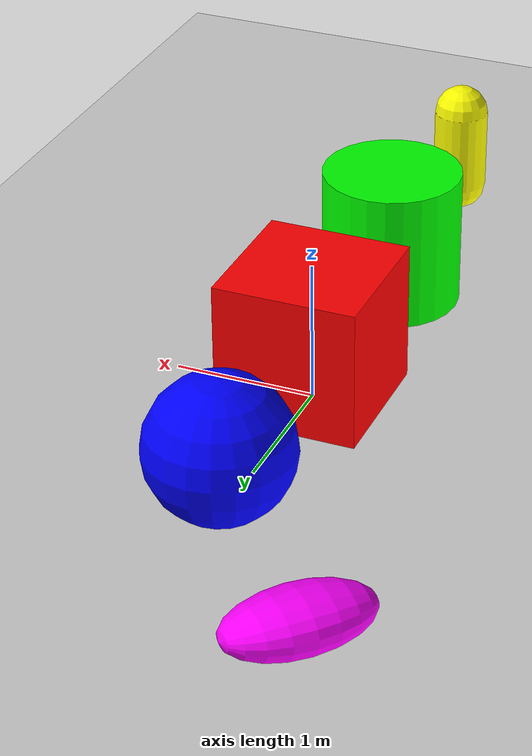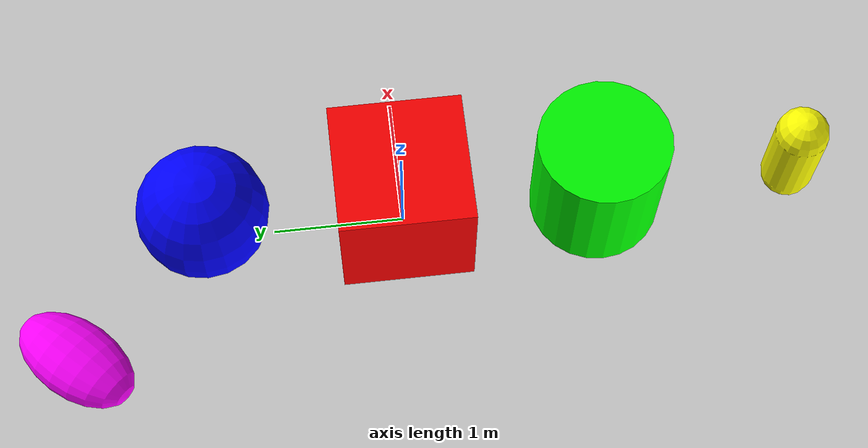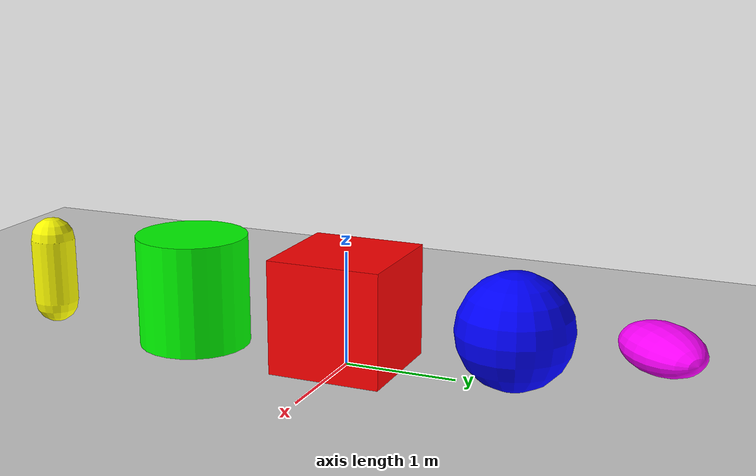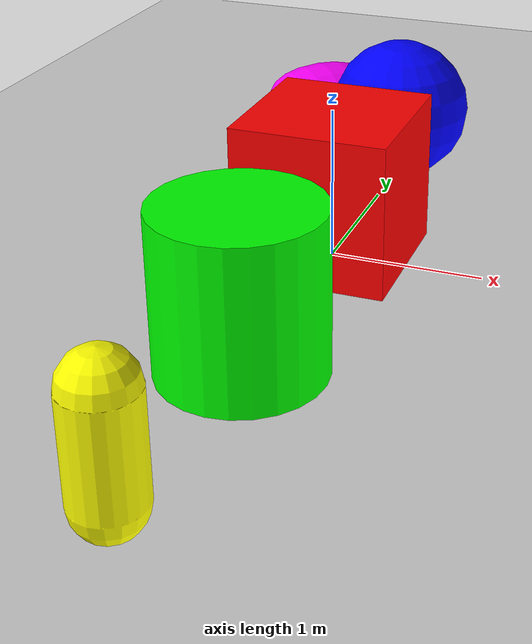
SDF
<sdf version='1.9'>
  <world name='shapes'>
    <scene>
      <ambient>1 1 1 1</ambient>
      <background>0.8 0.8 0.8 1</background>
      <shadows>true</shadows>
    </scene>
    <gravity>0 0 -9.8</gravity>
    <magnetic_field>6e-06 2.3e-05 -4.2e-05</magnetic_field>
    <atmosphere type='adiabatic'/>
    <physics type='ode'>
      <max_step_size>0.001</max_step_size>
      <real_time_factor>1</real_time_factor>
      <real_time_update_rate>1000</real_time_update_rate>
    </physics>
    <model name='ground_plane'>
      <static>true</static>
      <link name='link'>
        <collision name='collision'>
          <geometry>
            <plane>
              <normal>0 0 1</normal>
              <size>100 100</size>
            </plane>
          </geometry>
          <surface>
            <friction>
              <ode/>
            </friction>
            <bounce/>
            <contact/>
          </surface>
        </collision>
        <visual name='visual'>
          <geometry>
            <plane>
              <normal>0 0 1</normal>
              <size>100 100</size>
            </plane>
          </geometry>
          <material>
            <ambient>0.8 0.8 0.8 1</ambient>
            <diffuse>0.8 0.8 0.8 1</diffuse>
            <specular>0.8 0.8 0.8 1</specular>
          </material>
        </visual>
        <pose>0 0 0 0 -0 0</pose>
        <inertial>
          <pose>0 0 0 0 -0 0</pose>
          <mass>1</mass>
          <inertia>
            <ixx>1</ixx>
            <ixy>0</ixy>
            <ixz>0</ixz>
            <iyy>1</iyy>
            <iyz>0</iyz>
            <izz>1</izz>
          </inertia>
        </inertial>
        <enable_wind>false</enable_wind>
      </link>
      <pose>0 0 0 0 -0 0</pose>
      <self_collide>false</self_collide>
    </model>
    <model name='box'>
      <pose>-0 -0 0.499999 0 -0 0</pose>
      <link name='box_link'>
        <inertial>
          <inertia>
            <ixx>0.16666</ixx>
            <ixy>0</ixy>
            <ixz>0</ixz>
            <iyy>0.16666</iyy>
            <iyz>0</iyz>
            <izz>0.16666</izz>
          </inertia>
          <mass>1</mass>
          <pose>0 0 0 0 -0 0</pose>
        </inertial>
        <collision name='box_collision'>
          <geometry>
            <box>
              <size>1 1 1</size>
            </box>
          </geometry>
          <surface>
            <friction>
              <ode/>
            </friction>
            <bounce/>
            <contact/>
          </surface>
        </collision>
        <visual name='box_visual'>
          <geometry>
            <box>
              <size>1 1 1</size>
            </box>
          </geometry>
          <material>
            <ambient>1 0 0 1</ambient>
            <diffuse>1 0 0 1</diffuse>
            <specular>1 0 0 1</specular>
          </material>
        </visual>
        <pose>0 0 0 0 -0 0</pose>
        <enable_wind>false</enable_wind>
      </link>
      <static>false</static>
      <self_collide>false</self_collide>
    </model>
    <model name='cylinder'>
      <pose>0 -1.5 0.499999 -0 0 0</pose>
      <link name='cylinder_link'>
        <inertial>
          <inertia>
            <ixx>0.14580000000000001</ixx>
            <ixy>0</ixy>
            <ixz>0</ixz>
            <iyy>0.14580000000000001</iyy>
            <iyz>0</iyz>
            <izz>0.125</izz>
          </inertia>
          <mass>1</mass>
          <pose>0 0 0 0 -0 0</pose>
        </inertial>
        <collision name='cylinder_collision'>
          <geometry>
            <cylinder>
              <radius>0.5</radius>
              <length>1</length>
            </cylinder>
          </geometry>
          <surface>
            <friction>
              <ode/>
            </friction>
            <bounce/>
            <contact/>
          </surface>
        </collision>
        <visual name='cylinder_visual'>
          <geometry>
            <cylinder>
              <radius>0.5</radius>
              <length>1</length>
            </cylinder>
          </geometry>
          <material>
            <ambient>0 1 0 1</ambient>
            <diffuse>0 1 0 1</diffuse>
            <specular>0 1 0 1</specular>
          </material>
        </visual>
        <pose>0 0 0 0 -0 0</pose>
        <enable_wind>false</enable_wind>
      </link>
      <static>false</static>
      <self_collide>false</self_collide>
    </model>
    <model name='sphere'>
      <pose>0 1.5 0.499999 0 -0 0</pose>
      <link name='sphere_link'>
        <inertial>
          <inertia>
            <ixx>0.10000000000000001</ixx>
            <ixy>0</ixy>
            <ixz>0</ixz>
            <iyy>0.10000000000000001</iyy>
            <iyz>0</iyz>
            <izz>0.10000000000000001</izz>
          </inertia>
          <mass>1</mass>
          <pose>0 0 0 0 -0 0</pose>
        </inertial>
        <collision name='sphere_collision'>
          <geometry>
            <sphere>
              <radius>0.5</radius>
            </sphere>
          </geometry>
          <surface>
            <friction>
              <ode/>
            </friction>
            <bounce/>
            <contact/>
          </surface>
        </collision>
        <visual name='sphere_visual'>
          <geometry>
            <sphere>
              <radius>0.5</radius>
            </sphere>
          </geometry>
          <material>
            <ambient>0 0 1 1</ambient>
            <diffuse>0 0 1 1</diffuse>
            <specular>0 0 1 1</specular>
          </material>
        </visual>
        <pose>0 0 0 0 -0 0</pose>
        <enable_wind>false</enable_wind>
      </link>
      <static>false</static>
      <self_collide>false</self_collide>
    </model>
    <model name='capsule'>
      <pose>0 -3 0.499999 0 -0 0</pose>
      <link name='capsule_link'>
        <inertial>
          <inertia>
            <ixx>0.074153999999999998</ixx>
            <ixy>0</ixy>
            <ixz>0</ixz>
            <iyy>0.074153999999999998</iyy>
            <iyz>0</iyz>
            <izz>0.018769000000000001</izz>
          </inertia>
          <mass>1</mass>
          <pose>0 0 0 0 -0 0</pose>
        </inertial>
        <collision name='capsule_collision'>
          <geometry>
            <capsule>
              <radius>0.20000000000000001</radius>
              <length>0.59999999999999998</length>
            </capsule>
          </geometry>
          <surface>
            <friction>
              <ode/>
            </friction>
            <bounce/>
            <contact/>
          </surface>
        </collision>
        <visual name='capsule_visual'>
          <geometry>
            <capsule>
              <radius>0.20000000000000001</radius>
              <length>0.59999999999999998</length>
            </capsule>
          </geometry>
          <material>
            <ambient>1 1 0 1</ambient>
            <diffuse>1 1 0 1</diffuse>
            <specular>1 1 0 1</specular>
          </material>
        </visual>
        <pose>0 0 0 0 -0 0</pose>
        <enable_wind>false</enable_wind>
      </link>
      <static>false</static>
      <self_collide>false</self_collide>
    </model>
    <model name='ellipsoid'>
      <pose>-0.951633 2.52522 0.186668 1.5708 -1.37749 -0.747639</pose>
      <link name='ellipsoid_link'>
        <inertial>
          <inertia>
            <ixx>0.068000000000000005</ixx>
            <ixy>0</ixy>
            <ixz>0</ixz>
            <iyy>0.058000000000000003</iyy>
            <iyz>0</iyz>
            <izz>0.025999999999999999</izz>
          </inertia>
          <mass>1</mass>
          <pose>0 0 0 0 -0 0</pose>
        </inertial>
        <collision name='ellipsoid_collision'>
          <geometry>
            <ellipsoid>
              <radii>0.2 0.3 0.5</radii>
            </ellipsoid>
          </geometry>
          <surface>
            <friction>
              <ode/>
            </friction>
            <bounce/>
            <contact/>
          </surface>
        </collision>
        <visual name='ellipsoid_visual'>
          <geometry>
            <ellipsoid>
              <radii>0.2 0.3 0.5</radii>
            </ellipsoid>
          </geometry>
          <material>
            <ambient>1 0 1 1</ambient>
            <diffuse>1 0 1 1</diffuse>
            <specular>1 0 1 1</specular>
          </material>
        </visual>
        <pose>0 0 0 0 -0 0</pose>
        <enable_wind>false</enable_wind>
      </link>
      <static>false</static>
      <self_collide>false</self_collide>
    </model>
    <light name='sun' type='directional'>
      <pose>0 0 10 0 -0 0</pose>
      <cast_shadows>true</cast_shadows>
      <intensity>1</intensity>
      <direction>-0.5 0.1 -0.9</direction>
      <diffuse>0.8 0.8 0.8 1</diffuse>
      <specular>0.2 0.2 0.2 1</specular>
      <attenuation>
        <range>1000</range>
        <linear>0.01</linear>
        <constant>0.90000000000000002</constant>
        <quadratic>0.001</quadratic>
      </attenuation>
      <spot>
        <inner_angle>0</inner_angle>
        <outer_angle>0</outer_angle>
        <falloff>0</falloff>
      </spot>
    </light>
  </world>
</sdf>
